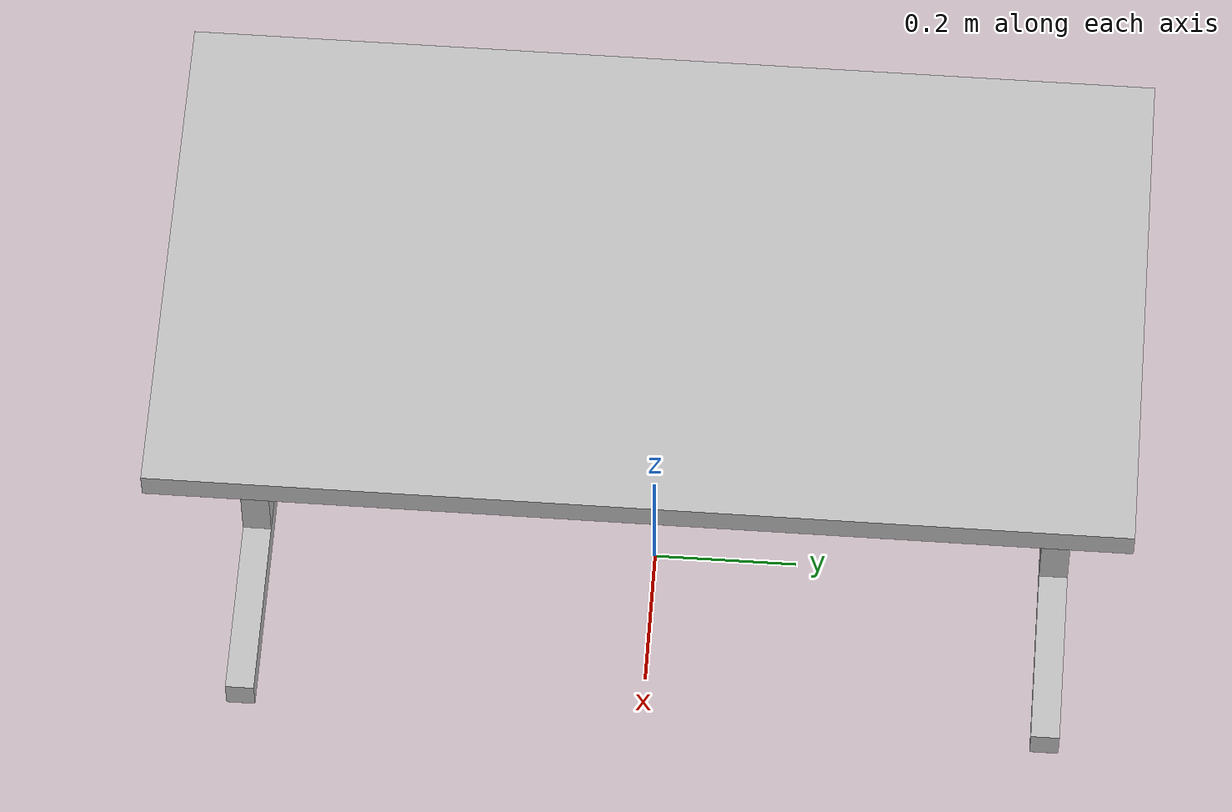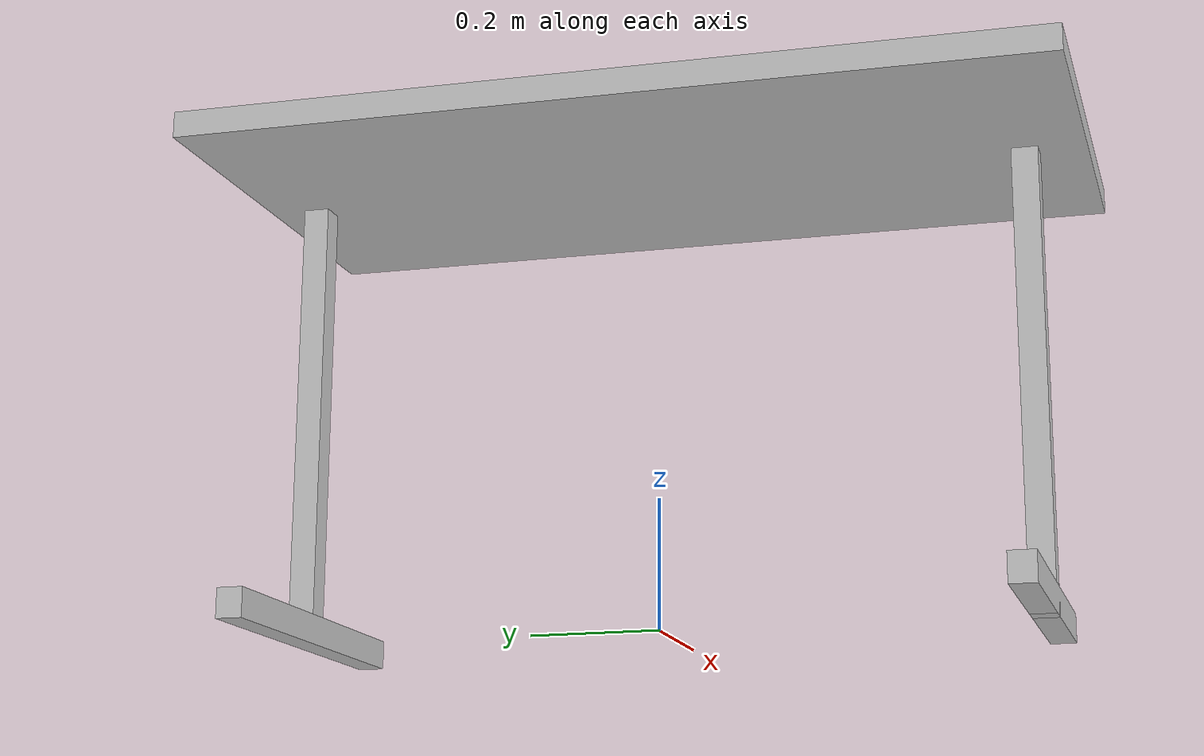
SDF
<?xml version="1.0"?>
<sdf version="1.6">
  <model name="rgo2017/table_bureau">
    <link name="1_link">
      <collision name="1_col">
        <geometry>
          <box>
            <size>0.705 1.31 0.04</size>
          </box>
        </geometry>
      </collision>
      <visual name="1_vis">
        <geometry>
          <box>
            <size>0.705 1.31 0.04</size>
          </box>
        </geometry>
        <material>
          <ambient>0.75 0.75 0.75 1</ambient>
        </material>
      </visual>
      <pose>0 0 0.73 0 0 0</pose>
    </link>
    <link name="2_link">
      <collision name="2_col">
        <geometry>
          <box>
            <size>0.04 0.04 0.699</size>
          </box>
        </geometry>
      </collision>
      <visual name="2_vis">
        <geometry>
          <box>
            <size>0.04 0.04 0.699</size>
          </box>
        </geometry>
        <material>
          <ambient>0.75 0.75 0.75 1</ambient>
        </material>
      </visual>
      <pose>0 0.565 0.3495 0 0 0</pose>
    </link>
    <link name="3_link">
      <collision name="3_col">
        <geometry>
          <box>
            <size>0.04 0.04 0.699</size>
          </box>
        </geometry>
      </collision>
      <visual name="3_vis">
        <geometry>
          <box>
            <size>0.04 0.04 0.699</size>
          </box>
        </geometry>
        <material>
          <ambient>0.75 0.75 0.75 1</ambient>
        </material>
      </visual>
      <pose>0.0 -0.565 0.3495 0 0 0</pose>
    </link>
    <link name="4_link">
      <collision name="4_col">
        <geometry>
          <box>
            <size>0.555 0.04 0.045</size>
          </box>
        </geometry>
      </collision>
      <visual name="4_vis">
        <geometry>
          <box>
            <size>0.555 0.04 0.045</size>
          </box>
        </geometry>
        <material>
          <ambient>0.75 0.75 0.75 1</ambient>
        </material>
      </visual>
      <pose>0.0 0.565 0.0225 0 0 0</pose>
    </link>
    <link name="5_link">
      <collision name="5_col">
        <geometry>
          <box>
            <size>0.555 0.04 0.045</size>
          </box>
        </geometry>
      </collision>
      <visual name="5_vis">
        <geometry>
          <box>
            <size>0.555 0.04 0.045</size>
          </box>
        </geometry>
        <material>
          <ambient>0.75 0.75 0.75 1</ambient>
        </material>
      </visual>
      <pose>0.0 -0.565 0.0225 0 0 0</pose>
    </link>
    <link name="on_top_of">
      <virtual_volume name="on_top_of_vv">
        <geometry>
          <box>
            <size>0.64 1.24 0.25</size>
          </box>
        </geometry>
        <pose>0.0 0.0 0.9 0 0 0</pose>
      </virtual_volume>
    </link>
    <link name="in_front_of">
      <virtual_volume name="in_front_of_vv">
        <geometry>
          <box>
            <size>0.2 0.9 0.01</size>
          </box>
        </geometry>
        <pose>1.3 0.0 0.005 0 0 0</pose>
      </virtual_volume>
    </link>
    <static>true</static>
  </model>
</sdf>
